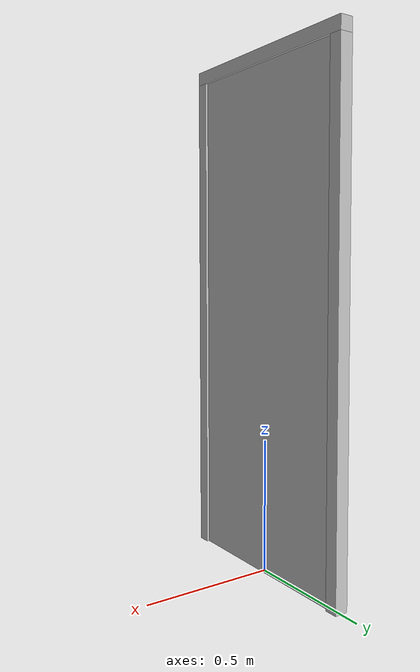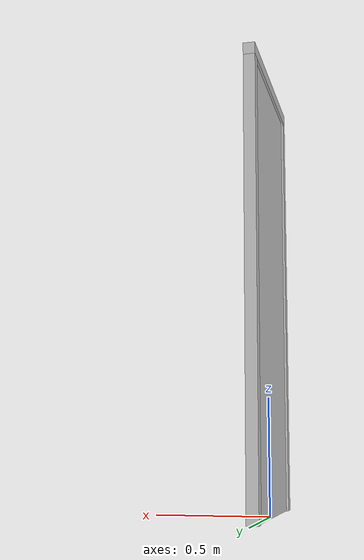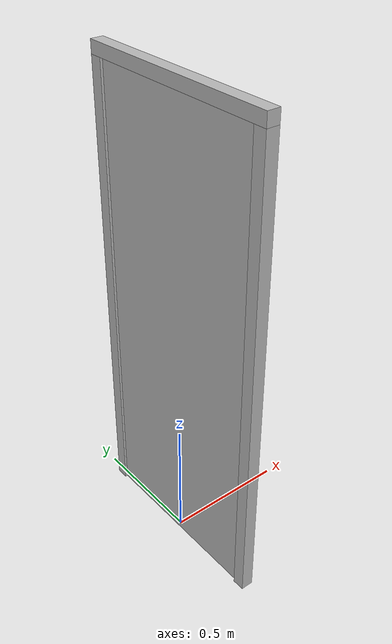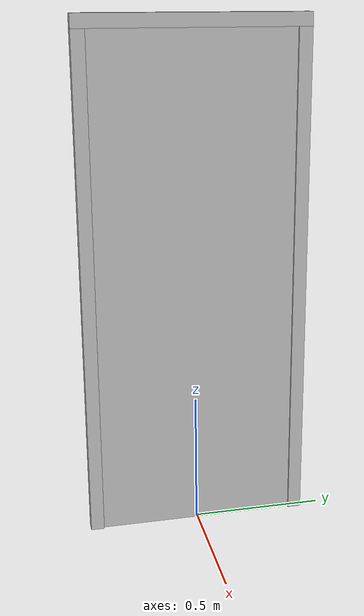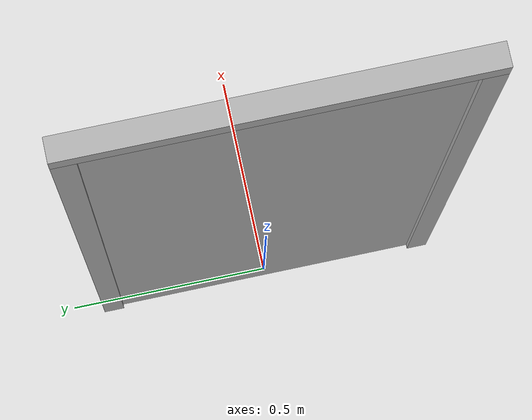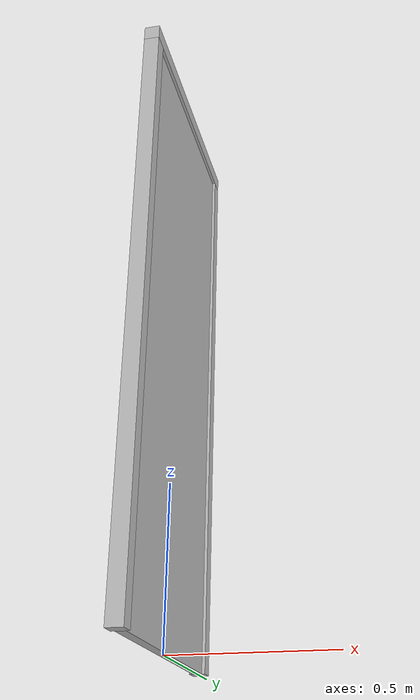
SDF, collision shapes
<?xml version="1.0" ?>
<sdf version="1.6">
  <model name="pcg_door_LHR_from_mesh_with_frame">
    <allow_auto_disable>0</allow_auto_disable>
    <pose frame="">0 0 0.945024 0 -0 0</pose>
    <self_collide>0</self_collide>
    <joint name="hinge" type="revolute">
      <pose frame="">0 0.375 0 0 -0 0</pose>
      <axis>
        <xyz>0 0 1</xyz>
        <limit>
          <upper>0.0</upper>
          <lower>-1.57079632679</lower>
          <effort>-1.0</effort>
          <velocity>-1.0</velocity>
        </limit>
        <dynamics>
          <spring_reference>0.0</spring_reference>
          <spring_stiffness>0.0</spring_stiffness>
          <friction>0.0</friction>
          <damping>0.0</damping>
        </dynamics>
        <use_parent_model_frame>0</use_parent_model_frame>
      </axis>
      <parent>world</parent>
      <child>door</child>
    </joint>
    <joint name="frame_to_world" type="revolute">
      <pose frame="">0 0 0 0 -0 0</pose>
      <axis>
        <xyz>0 0 1</xyz>
        <limit>
          <upper>0.0</upper>
          <lower>0.0</lower>
          <effort>-1.0</effort>
          <velocity>-1.0</velocity>
        </limit>
        <dynamics>
          <spring_reference>0.0</spring_reference>
          <spring_stiffness>0.0</spring_stiffness>
          <friction>0.0</friction>
          <damping>0.0</damping>
        </dynamics>
        <use_parent_model_frame>0</use_parent_model_frame>
      </axis>
      <parent>world</parent>
      <child>frame</child>
    </joint>
    <static>0</static>
    <link name="frame">
      <collision name="left_frame_collision">
        <geometry>
          <box>
            <size>0.05 0.05 1.89005</size>
          </box>
        </geometry>
        <max_contacts>20</max_contacts>
        <pose frame="">0 -0.4 0 0 -0 0</pose>
      </collision>
      <collision name="right_frame_collision">
        <geometry>
          <box>
            <size>0.05 0.05 1.89005</size>
          </box>
        </geometry>
        <max_contacts>20</max_contacts>
        <pose frame="">0 0.4 0 0 -0 0</pose>
      </collision>
      <collision name="top_frame_collision">
        <geometry>
          <box>
            <size>0.05 0.85 0.05</size>
          </box>
        </geometry>
        <max_contacts>20</max_contacts>
        <pose frame="">0 0 0.970024 0 -0 0</pose>
      </collision>
      <visual name="left_frame_visual">
        <geometry>
          <box>
            <size>0.05 0.05 1.89005</size>
          </box>
        </geometry>
        <pose frame="">0 -0.4 0 0 -0 0</pose>
        <cast_shadows>1</cast_shadows>
        <transparency>0.0</transparency>
      </visual>
      <visual name="right_frame_visual">
        <geometry>
          <box>
            <size>0.05 0.05 1.89005</size>
          </box>
        </geometry>
        <pose frame="">0 0.4 0 0 -0 0</pose>
        <cast_shadows>1</cast_shadows>
        <transparency>0.0</transparency>
      </visual>
      <visual name="top_frame_visual">
        <geometry>
          <box>
            <size>0.05 0.85 0.05</size>
          </box>
        </geometry>
        <pose frame="">0 0 0.970024 0 -0 0</pose>
        <cast_shadows>1</cast_shadows>
        <transparency>0.0</transparency>
      </visual>
      <pose frame="">0 0 0 0 -0 0</pose>
    </link>
    <link name="door">
      <collision name="collision">
        <geometry>
          <box>
            <size>0.75 0.03 1.89005</size>
          </box>
        </geometry>
        <max_contacts>20</max_contacts>
        <pose frame="">0 0 0 -5.41757e-20 5.41757e-20 -1.5708</pose>
      </collision>
      <visual name="visual">
        <geometry>
          <mesh>
            <scale>1 1 1</scale>
            <uri>file:///home/mam0box/catkin_ws/src/pcg_gazebo_pkgs/pcg_examples/meshes/door.obj</uri>
          </mesh>
        </geometry>
        <pose frame="">0 0 -0.953831 -5.41757e-20 5.41757e-20 -1.5708</pose>
        <cast_shadows>1</cast_shadows>
        <transparency>0.0</transparency>
      </visual>
      <pose frame="">0 0 0 0 -0 0</pose>
    </link>
  </model>
</sdf>
